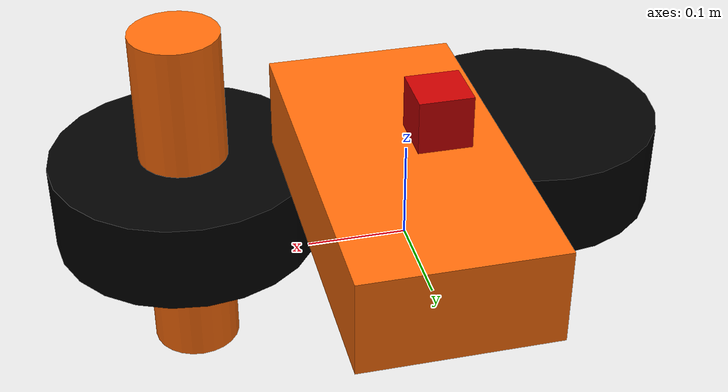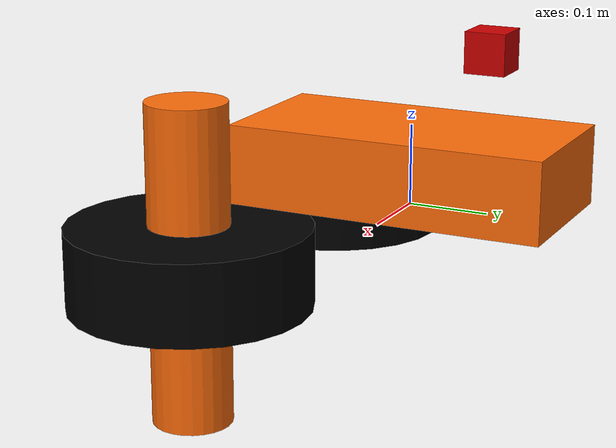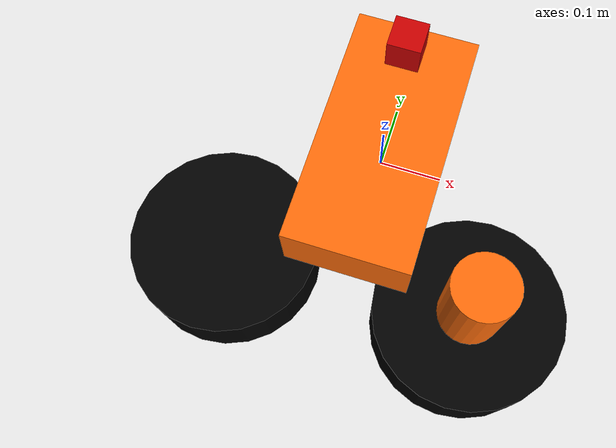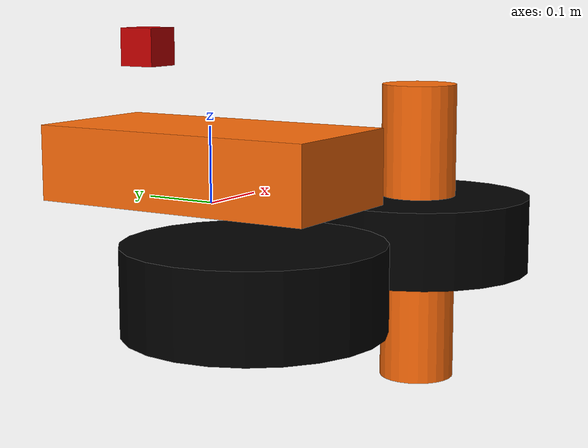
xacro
<?xml version="1.0"?>

<!-- chaosbot: robot for 2018 SparkFun AVC Challenge in the Logisitics Class category -->
<robot name="chaosbot" xmlns:xacro="http://www.ros.org/wiki/xacro">

  <!-- Constants for robot dimensions -->
  <xacro:property name="PI" value="3.1415926535897931"/>
  <xacro:property name="mass" value="1" /> <!-- arbitrary value for mass -->
  <xacro:property name="width_base" value="0.2" /> <!-- Rectangular dimensions (widthxdepth) of base -->
  <xacro:property name="depth_base" value="0.4" /> <!-- Rectangular dimensions (widthxdepth) of base -->
  <xacro:property name="length_wheelaxle" value="0.4" /> <!-- Dimensions (lengthxradius) of wheel axles -->
  <xacro:property name="radius_wheelaxle" value="0.05" /> <!-- Rectangular dimensions (lengthxradius) of base -->
  <xacro:property name="width_wheel" value="0.1" /> <!-- Dimensions (widthxradius) of wheels -->
  <xacro:property name="radius_wheel" value="0.15" /> <!-- Dimension (widthxradius) of wheels -->

  <xacro:property name="width_beams" value="0.1" /> <!-- Square dimensions (widthxwidth) of beams -->
  <xacro:property name="height_base" value="0.1" /> <!-- Robot Base -->
  <xacro:property name="height_chest" value="2" /> <!-- Chest -->
  <xacro:property name="height_bicep" value="1" /> <!-- Bicep -->
  <xacro:property name="height_forearm" value="1" /> <!-- Forearm -->
  <xacro:property name="height_hand" value="1" /> <!-- Hand -->
  <xacro:property name="camera_size" value="0.05" /> <!-- Size of square 'camera' box -->
  <xacro:property name="axel_offset" value="0.05" /> <!-- Space btw top of beam and the each joint -->

  <!-- Import all Gazebo-customization elements, including Gazebo colors -->
  <xacro:include filename="$(find bot_definition)/urdf/chaosbot.gazebo" />
  <!-- Import Rviz colors -->
  <xacro:include filename="$(find bot_definition)/urdf/materials.xacro" />

  <!-- Robot Base -->
  <link name="base">
    <collision>
      <origin xyz="0 0 ${height_base/2}" rpy="0 0 0"/>
      <geometry>
        <box size="${width_base} ${depth_base} ${height_base}"/>
      </geometry>
    </collision>
    <visual>
      <origin xyz="0 0 ${height_base/2}" rpy="0 0 0"/>
      <geometry>
        <box size="${width_base} ${depth_base} ${height_base}"/>
      </geometry>
      <material name="orange"/>
    </visual>
    <inertial>
      <origin xyz="0 0 ${height_base/2}" rpy="0 0 0"/>
      <mass value="${mass}"/>
      <inertia
	  ixx="${mass / 12.0 * (width_base*depth_base + height_base*height_base)}" ixy="0.0" ixz="0.0"
	  iyy="${mass / 12.0 * (height_base*height_base + width_base*depth_base)}" iyz="0.0"
	  izz="${mass / 12.0 * (width_base*depth_base + width_base*depth_base)}"/>
    </inertial>
  </link>

  <!-- Front wheel axle -->
  <link name="front_wheelaxle">
    <collision>
      <origin xyz="${length_wheelaxle/2} 0 0" rpy="0 0 0"/>
      <geometry>
        <cylinder length="${length_wheelaxle}" radius="${radius_wheelaxle}"/>
      </geometry>
    </collision>
    <visual>
      <origin xyz="${length_wheelaxle/2} 0 0" rpy="0 0 0"/>
      <geometry>
        <cylinder length="${length_wheelaxle}" radius="${radius_wheelaxle}"/>
      </geometry>
      <material name="orange"/>
    </visual>
    <inertial>
      <origin xyz="${length_wheelaxle/2} 0 0" rpy="0 0 0"/>
      <mass value="1e-5" />
      <inertia ixx="1e-6" ixy="0" ixz="0" iyy="1e-6" iyz="0" izz="1e-6" />
    </inertial>
  </link>

  <joint name="base_to_front_wheelaxle" type="fixed">
    <parent link="base"/>
    <child link="front_wheelaxle"/>
    <origin xyz="0 ${-width_base} ${-radius_wheelaxle}" rpy="0 0 0"/>
    <axis xyz="1 0 0"/>
    <dynamics damping="0.7"/>
  </joint>

  <!-- Front left wheel -->
  <link name="front_left_wheel">
    <collision>
      <origin rpy="0 0 0" xyz="0 0 0"/>
      <geometry>
        <cylinder length="${width_wheel}" radius="${radius_wheel}"/>
      </geometry>
    </collision>
    <visual>
      <origin rpy="0 0 0" xyz="0 0 0"/>
      <geometry>
        <cylinder length="${width_wheel}" radius="${radius_wheel}"/>
      </geometry>
      <material name="black"/>
    </visual>
    <inertial>
      <origin xyz="${width_wheel/2} 0 0" rpy="0 0 0"/>
      <mass value="${mass}"/>
      <inertia
	  ixx="0.0" ixy="0.0" ixz="0.0"
	  iyy="0.0" iyz="0.0"
	  izz="0.0"/>
    </inertial>
  </link>
  <joint name="front_left_wheel_joint" type="continuous">
    <parent link="front_wheelaxle"/>
    <child link="front_left_wheel"/>
    <origin rpy="0 0 0" xyz="${-length_wheelaxle/2} 0 0"/>
    <axis rpy="0 0 0" xyz="1 0 0"/>
    <dynamics damping="0.7"/>
  </joint>

  <!-- Front right wheel -->
  <link name="front_right_wheel">
    <collision>
      <origin rpy="0 0 0" xyz="0 0 0"/>
      <geometry>
        <cylinder length="${width_wheel}" radius="${radius_wheel}"/>
      </geometry>
    </collision>
    <visual>
      <origin rpy="0 0 0" xyz="0 0 0"/>
      <geometry>
        <cylinder length="${width_wheel}" radius="${radius_wheel}"/>
      </geometry>
      <material name="black"/>
    </visual>
    <inertial>
      <origin xyz="${width_wheel/2} 0 0" rpy="0 0 0"/>
      <mass value="${mass}"/>
      <inertia
	  ixx="0.0" ixy="0.0" ixz="0.0"
	  iyy="0.0" iyz="0.0"
	  izz="0.0"/>
    </inertial>
  </link>
  <joint name="front_right_wheel_joint" type="continuous">
    <parent link="front_wheelaxle"/>
    <child link="front_right_wheel"/>
    <origin rpy="0 0 0" xyz="${length_wheelaxle/2} 0 0"/>
    <axis rpy="0 0 0" xyz="1 0 0"/>
    <dynamics damping="0.7"/>
  </joint>

  <!-- Back wheel axle -->
  <link name="back_wheelaxle">
    <collision>
      <origin xyz="${length_wheelaxle/2} 0 0" rpy="0 0 0"/>
      <geometry>
        <cylinder length="${length_wheelaxle}" radius="${radius_wheelaxle}"/>
      </geometry>
    </collision>
    <visual>
      <origin xyz="${length_wheelaxle/2} 0 0" rpy="0 0 0"/>
      <geometry>
        <cylinder length="${length_wheelaxle}" radius="${radius_wheelaxle}"/>
      </geometry>
      <material name="orange"/>
    </visual>
    <inertial>
      <origin xyz="${length_wheelaxle/2} 0 0" rpy="0 0 0"/>
      <mass value="1e-5" />
      <inertia ixx="1e-6" ixy="0" ixz="0" iyy="1e-6" iyz="0" izz="1e-6" />
    </inertial>
  </link>
  <joint name="base_to_back_wheelaxle" type="fixed">
    <parent link="base"/>
    <child link="back_wheelaxle"/>
    <origin xyz="0 ${-width_base} ${-radius_wheelaxle}" rpy="0 0 0"/>
    <axis xyz="1 0 0"/>
    <dynamics damping="0.7"/>
  </joint>

  <!-- Back left wheel -->
  <link name="back_left_wheel">
    <collision>
      <origin rpy="0 0 0" xyz="0 0 0"/>
      <geometry>
        <cylinder length="${width_wheel}" radius="${radius_wheel}"/>
      </geometry>
    </collision>
    <visual>
      <origin rpy="0 0 0" xyz="0 0 0"/>
      <geometry>
        <cylinder length="${width_wheel}" radius="${radius_wheel}"/>
      </geometry>
      <material name="black"/>
    </visual>
    <inertial>
      <origin xyz="${width_wheel/2} 0 0" rpy="0 0 0"/>
      <mass value="${mass}"/>
      <inertia
	  ixx="0.0" ixy="0.0" ixz="0.0"
	  iyy="0.0" iyz="0.0"
	  izz="0.0"/>
    </inertial>
  </link>
  <joint name="back_left_wheel_joint" type="continuous">
    <parent link="back_wheelaxle"/>
    <child link="back_left_wheel"/>
    <origin rpy="0 0 0" xyz="${length_wheelaxle/2} 0 0"/>
    <axis rpy="0 0 0" xyz="1 0 0"/>
    <dynamics damping="0.7"/>
  </joint>

  <!-- Back right wheel -->
  <link name="back_right_wheel">
    <collision>
      <origin rpy="0 0 0" xyz="0 0 0"/>
      <geometry>
        <cylinder length="${width_wheel}" radius="${radius_wheel}"/>
      </geometry>
    </collision>
    <visual>
      <origin rpy="0 0 0" xyz="0 0 0"/>
      <geometry>
        <cylinder length="${width_wheel}" radius="${radius_wheel}"/>
      </geometry>
      <material name="black"/>
    </visual>
    <inertial>
      <origin xyz="${width_wheel/2} 0 0" rpy="0 0 0"/>
      <mass value="${mass}"/>
      <inertia
	  ixx="0.0" ixy="0.0" ixz="0.0"
	  iyy="0.0" iyz="0.0"
	  izz="0.0"/>
    </inertial>
  </link>
  <joint name="back_right_wheel_joint" type="continuous">
    <parent link="back_wheelaxle"/>
    <child link="back_right_wheel"/>
    <origin rpy="0 0 0" xyz="${length_wheelaxle/2} 0 0"/>
    <axis rpy="0 0 0" xyz="1 0 0"/>
    <dynamics damping="0.7"/>
  </joint>

  <joint name="camera_mount_front" type="continuous">
    <parent link="base"/>
    <child link="camera_front"/>
    <origin xyz="0 ${width_base/2} ${width_base}" rpy="0 0 0"/>
    <axis xyz="0 0 1"/>
    <dynamics damping="0.7"/>
  </joint>

  <!-- Front camera -->
  <link name="camera_front">
    <collision>
      <origin xyz="0 0 0" rpy="0 0 0"/>
      <geometry>
	<box size="${camera_size} ${camera_size} ${camera_size}"/>
      </geometry>
    </collision>
    <visual>
      <origin xyz="0 0 0" rpy="0 0 0"/>
      <geometry>
	<box size="${camera_size} ${camera_size} ${camera_size}"/>
      </geometry>
      <material name="red"/>
    </visual>
    <inertial>
      <mass value="1e-5" />
      <origin xyz="0 0 0" rpy="0 0 0"/>
      <inertia ixx="1e-6" ixy="0" ixz="0" iyy="1e-6" iyz="0" izz="1e-6" />
    </inertial>
  </link>
  <!-- generate an optical frame http://www.ros.org/reps/rep-0103.html#suffix-frames
      so that ros and opencv can operate on the camera frame correctly -->
  <link name="camera_front_optical">
  </link>
  <joint name="camera_optical_joint" type="fixed">
    <!-- these values have to be these values otherwise the gazebo camera image
        won't be aligned properly with the frame it is supposedly originating from -->
    <origin xyz="0 0 0" rpy="${-pi/2} 0 ${-pi/2}"/>
    <parent link="camera_front"/>
    <child link="camera_front_optical"/>
  </joint>

</robot>

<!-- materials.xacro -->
<robot>

  <material name="black">
    <color rgba="0.0 0.0 0.0 1.0"/>
  </material>

  <material name="blue">
    <color rgba="0.0 0.0 0.8 1.0"/>
  </material>

  <material name="green">
    <color rgba="0.0 0.8 0.0 1.0"/>
  </material>

  <material name="grey">
    <color rgba="0.2 0.2 0.2 1.0"/>
  </material>

  <material name="orange">
    <color rgba="${255/255} ${108/255} ${10/255} 1.0"/>
  </material>

  <material name="yellow">
    <color rgba="1 1 0 1"/>
  </material>

  <material name="brown">
    <color rgba="${222/255} ${207/255} ${195/255} 1.0"/>
  </material>

  <material name="red">
    <color rgba="0.8 0.0 0.0 1.0"/>
  </material>

  <material name="white">
    <color rgba="1.0 1.0 1.0 1.0"/>
  </material>

</robot>
